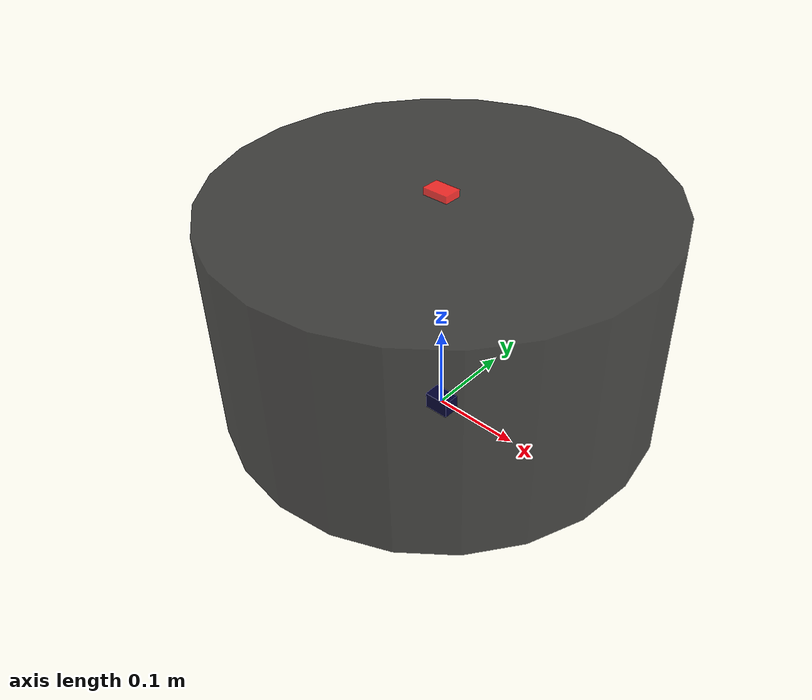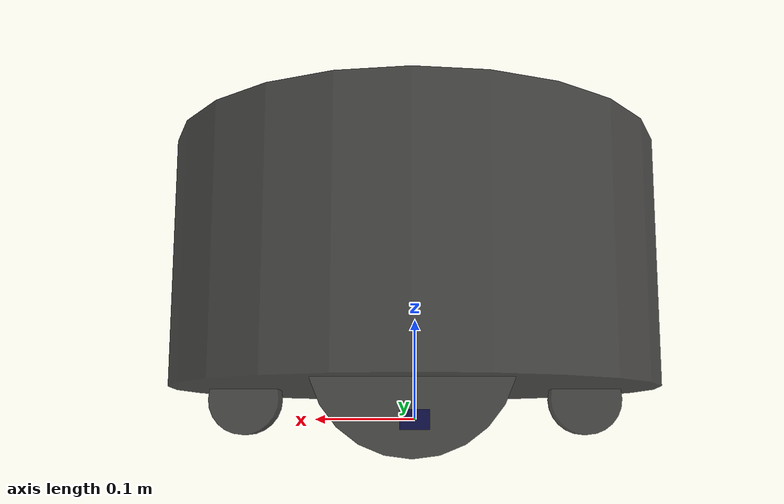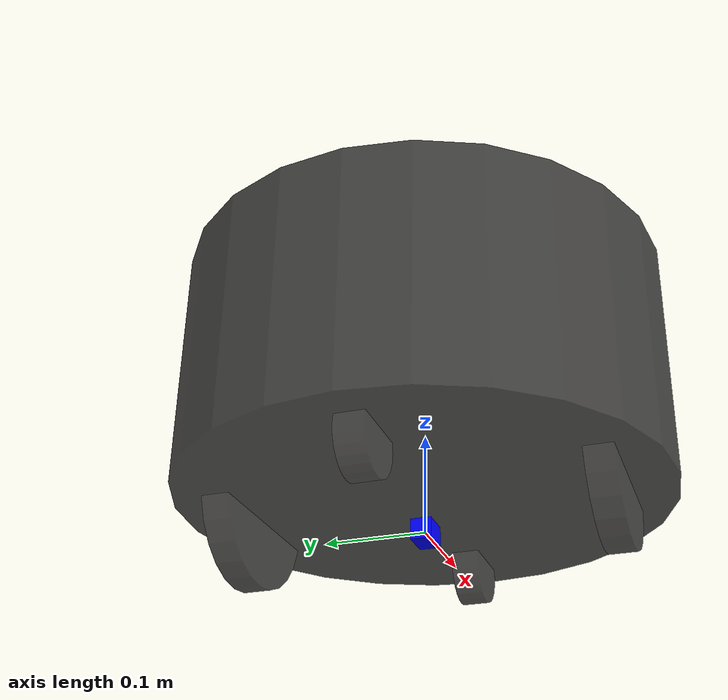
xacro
<?xml version="1.0" ?>

<robot xmlns:xacro="http://ros.org/wiki/xacro">
  <xacro:property name="M_PI" value="3.1415926535897931" />

    <link name="base_footprint"/>
    <joint name="base_joint" type="fixed">
      <origin xyz="0 0 0" rpy="0 0 0" />
      <parent link="base_footprint"/>
      <child link="base_link" />
    </joint>

    <link name="base_link">
      <visual>
        <geometry>
          <!-- new mesh -->
          <cylinder length="0.24" radius="0.24" />
        </geometry>
        <origin xyz="0 0 0.15" rpy="0 0 0"/>
        <material name="black"/>
      </visual>
      <collision name="base">
        <geometry>
          <cylinder length="0.24" radius="0.24"/>
        </geometry>
        <origin xyz="0.0 0 0.15" rpy="0 0 0"/>
      </collision>
      <inertial>
        <origin xyz="0.01 0 0"/>
        <mass value="2.4"/>
        <inertia ixx="0.019995" ixy="0.0" ixz="0.0"
                 iyy="0.019995" iyz="0.0"
                 izz="0.03675" />
      </inertial>
    </link>

    <joint name="left_wheel_joint" type="continuous">
      <parent link="base_link"/>
      <child link="left_wheel_link"/>
      <origin xyz="0.00 ${0.36/2} 0.02" rpy="${-M_PI/2} 0 0"/>
      <axis xyz="0 0 1"/>
    </joint>
    <link name="left_wheel_link">
      <visual>
        <geometry>
          <cylinder length="0.0276" radius="0.0848" />
        </geometry>
        <origin xyz="0 -0.03 0" rpy="0 0 0"/>
        <material name="black"/>
      </visual>
      <collision>
        <geometry>
          <cylinder length="0.0276" radius="0.0848"/>
        </geometry>
        <origin rpy="0 0 0" xyz="0 0 0"/>
      </collision>
      <inertial>
        <mass value="0.01" />
        <origin xyz="0 0 0" />
        <inertia ixx="0.001" ixy="0.0" ixz="0.0"
                 iyy="0.001" iyz="0.0"
                 izz="0.001" />
      </inertial>
    </link>

    <joint name="right_wheel_joint" type="continuous">
      <parent link="base_link"/>
      <child link="right_wheel_link"/>
      <origin xyz="0.00 -${0.36/2} 0.02" rpy="${-M_PI/2} 0 0"/>
      <axis xyz="0 0 1"/>
    </joint>
    <link name="right_wheel_link">
      <visual>
        <geometry>
          <cylinder length="0.0276" radius="0.0848" />
        </geometry>
        <origin xyz="0 -0.03 0" rpy="0 0 0"/>
        <material name="black"/>
      </visual>
      <collision>
        <geometry>
          <cylinder length="0.0276" radius="0.0848"/>
        </geometry>
        <origin rpy="0 0 0" xyz="0 0 0"/>
      </collision>
      <inertial>
        <mass value="0.01" />
        <origin xyz="0 0 0" />
        <inertia ixx="0.001" ixy="0.0" ixz="0.0"
                 iyy="0.001" iyz="0.0"
                 izz="0.001" />
      </inertial>
    </link>

    <joint name="caster_front_joint" type="fixed">
      <parent link="base_link"/>
      <child link="caster_front_link"/>
      <origin xyz="0.17 0.0 0.02" rpy="${-M_PI/2} 0 0"/>
    </joint>
    <link name="caster_front_link">
      <visual>
        <geometry>
          <cylinder length="0.0276" radius="0.035"/>
        </geometry>
        <origin xyz="0 0 0" rpy="0 0 0"/>
        <material name="black"/>
      </visual>
      <collision>
        <geometry>
          <cylinder length="0.0276" radius="0.035"/>
        </geometry>
        <origin rpy="0 0 0" xyz="0 0 0"/>
      </collision>
      <inertial>
        <mass value="0.01" />
        <origin xyz="0 0 0" />
        <inertia ixx="0.001" ixy="0.0" ixz="0.0"
                 iyy="0.001" iyz="0.0"
                 izz="0.001" />
      </inertial>
    </link>

    <joint name="caster_back_joint" type="fixed">
      <parent link="base_link"/>
      <child link="caster_back_link"/>
      <origin xyz="-0.17 0.0 0.02" rpy="${-M_PI/2} 0 0"/>
    </joint>
    <link name="caster_back_link">
      <visual>
        <geometry>
          <cylinder length="0.0276" radius="0.035"/>
        </geometry>
        <origin xyz="0 0 0" rpy="0 0 0"/>
        <material name="black"/>
      </visual>
      <collision>
        <geometry>
          <cylinder length="0.0276" radius="0.035"/>
        </geometry>
        <origin rpy="0 0 0" xyz="0 0 0"/>
      </collision>
      <inertial>
        <mass value="0.01" />
        <origin xyz="0 0 0" />
        <inertia ixx="0.001" ixy="0.0" ixz="0.0"
                 iyy="0.001" iyz="0.0"
                 izz="0.001" />
      </inertial>
    </link>

    <!-- ROM Edit -->
    <!-- LASER -->
    <joint name="laser_joint" type="fixed">
      <parent link="base_link"/>
      <child link="laser_link"/>
      <origin xyz="0.18 0 0.24" rpy="3.1415926 0 0"/>
    </joint>

    <link name="laser_link">
      <visual>
        <origin xyz="0 0 0.0" rpy="0 0 0"/>
        <geometry>
          <box size="0.05 0.05 0.05"/>
        </geometry>
        <material name="grey_blue"/>
      </visual>

      <collision>
        <origin xyz="0.015 0 -0.0065" rpy="0 0 0"/>
        <geometry>
          <cylinder length="0.0315" radius="0.055"/>
        </geometry>
      </collision>

      <inertial>
        <mass value="0.114" />
        <origin xyz="0 0 0" />
        <inertia ixx="0.001" ixy="0.0" ixz="0.0"
                 iyy="0.001" iyz="0.0"
                 izz="0.001" />
      </inertial>
    </link>

  <!-- IMU -->
  <joint name="imu_joint" type="fixed">
      <parent link="base_link"/>
      <child link="imu_link"/>
      <origin xyz="0 0 0.268" rpy="0 0 0"/>
  </joint>

  <link name="imu_link">
      <visual>
        <origin xyz="0 0 0.0" rpy="0 0 0"/>
        <geometry>
          <box size="0.03 0.02 0.02"/>
        </geometry>
        <material name="red"/>
      </visual>
  </link>
  <!-- 3D CAM1 -->
  <joint name="right_camera_joint" type="fixed">
    <parent link="base_link"/>
    <child link="right_camera_link"/>
    <origint xyz="0.18 -0.2 0.1" rpy="0 0 0"/>
  </joint>
  <link name="right_camera_link">
      <visual>
        <origin xyz="0 0 0.0" rpy="0 0 0"/>
        <geometry>
          <box size="0.03 0.02 0.02"/>
        </geometry>
        <material name="blue"/>
      </visual>
  </link>
  <!-- 3D CAM2 -->
  <joint name="left_camera_joint" type="fixed">
    <parent link="base_link"/>
    <child link="left_camera_link"/>
    <origint xyz="0.18 0.2 0.1" rpy="0 0 0"/>
  </joint>
  <link name="left_camera_link">
      <visual>
        <origin xyz="0 0 0.0" rpy="0 0 0"/>
        <geometry>
          <box size="0.03 0.02 0.02"/>
        </geometry>
        <material name="blue"/>
      </visual>
  </link>
  <!-- 3D CAM3 -->
  <joint name="top_camera_joint" type="fixed">
    <parent link="base_link"/>
    <child link="top_camera_link"/>
    <origint xyz="0.18 0 0.5" rpy="0 0 0"/>
  </joint>
  <link name="top_camera_link">
      <visual>
        <origin xyz="0 0 0.0" rpy="0 0 0"/>
        <geometry>
          <box size="0.03 0.02 0.02"/>
        </geometry>
        <material name="blue"/>
      </visual>
  </link>
  <!-- materials colors for rviz  -->
  <material name="white">
    <color rgba="1 1 1 0.8"/>
  </material>

  <material name="grey">
    <color rgba="0.5 0.5 0.5 1"/>
  </material>

  <material name="light_grey">
    <color rgba="0.6 0.6 0.6 0.7"/>
  </material>

  <material name="dark_grey">
    <color rgba="0.3 0.3 0.3 0.7"/>
  </material>

  <material name="black">
    <color rgba="0.1 0.1 0.1 0.8"/>
  </material>

  <material name="red">
    <color rgba="1 0 0 0.8"/>
  </material>

  <material name="green">
    <color rgba="0.0 0.8 0.0 1"/>
  </material>

  <material name="blue">
    <color rgba="0.0 0.0 1.0 1"/>
  </material>

  <material name="grey_blue">
    <color rgba="0.4 0.4 1.0 0.8"/>
  </material>

  <material name="orange">
    <color rgba="1.0 0.7 0.0 1"/>
  </material>
  <!-- ROM END -->
</robot>
